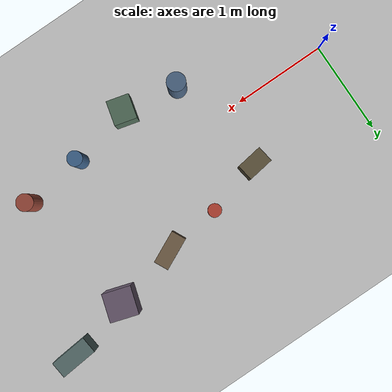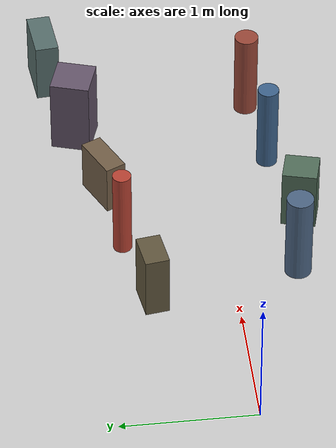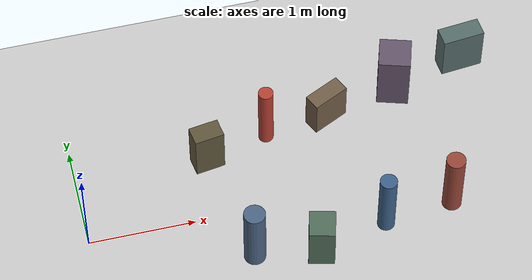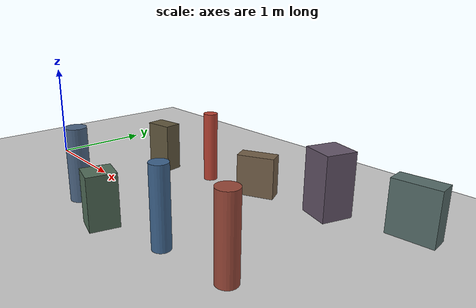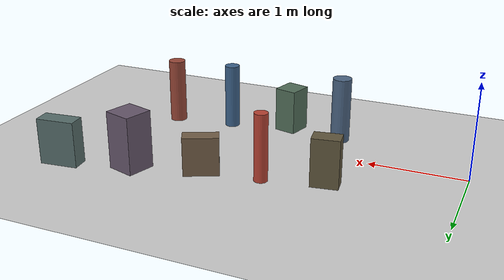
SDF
<?xml version="1.0"?>
<sdf version="1.9">
  <world name="follow_me_dense_mixed_obstacles">
    <plugin filename="libignition-gazebo-physics-system.so"
            name="ignition::gazebo::systems::Physics"/>
    <plugin filename="libignition-gazebo-user-commands-system.so"
            name="ignition::gazebo::systems::UserCommands"/>
    <plugin filename="libignition-gazebo-scene-broadcaster-system.so"
            name="ignition::gazebo::systems::SceneBroadcaster"/>
    <plugin filename="libignition-gazebo-sensors-system.so"
            name="ignition::gazebo::systems::Sensors">
      <!-- FortressではLiDAR出力をGazebo Transportへ出し、ROS側へはros_gz_bridgeで接続する。 -->
      <render_engine>ogre2</render_engine>
    </plugin>

    <physics name="default_physics" type="ode">
      <max_step_size>0.001</max_step_size>
      <real_time_update_rate>1000</real_time_update_rate>
      <real_time_factor>1.0</real_time_factor>
    </physics>

    <scene>
      <ambient>0.45 0.45 0.45 1</ambient>
      <background>0.7 0.7 0.7 1</background>
      <shadows>true</shadows>
    </scene>

    <light type="directional" name="sun">
      <cast_shadows>true</cast_shadows>
      <pose>0 0 10 0 0 0</pose>
      <diffuse>0.8 0.8 0.8 1</diffuse>
      <specular>0.2 0.2 0.2 1</specular>
      <attenuation>
        <range>1000</range>
        <constant>0.9</constant>
        <linear>0.01</linear>
        <quadratic>0.001</quadratic>
      </attenuation>
      <direction>-0.5 0.1 -0.9</direction>
    </light>

    <model name="ground_plane">
      <static>true</static>
      <link name="link">
        <collision name="collision">
          <geometry>
            <plane>
              <normal>0 0 1</normal>
              <size>100 100</size>
            </plane>
          </geometry>
        </collision>
        <visual name="visual">
          <geometry>
            <plane>
              <normal>0 0 1</normal>
              <size>100 100</size>
            </plane>
          </geometry>
          <material>
            <ambient>0.8 0.8 0.8 1</ambient>
            <diffuse>0.8 0.8 0.8 1</diffuse>
          </material>
        </visual>
      </link>
    </model>

    <model name="dense_box_left_1">
      <static>true</static>
      <pose>1.25 0.62 0.25 0 0 0.15</pose>
      <link name="link">
        <collision name="collision">
          <geometry>
            <box>
              <size>0.28 0.18 0.50</size>
            </box>
          </geometry>
        </collision>
        <visual name="visual">
          <visibility_flags>536870913</visibility_flags>
          <geometry>
            <box>
              <size>0.28 0.18 0.50</size>
            </box>
          </geometry>
          <material>
            <ambient>0.38 0.34 0.24 1</ambient>
            <diffuse>0.38 0.34 0.24 1</diffuse>
          </material>
        </visual>
      </link>
    </model>

    <model name="dense_cylinder_right_1">
      <static>true</static>
      <pose>1.45 -0.48 0.35 0 0 0</pose>
      <link name="link">
        <collision name="collision">
          <geometry>
            <cylinder>
              <radius>0.10</radius>
              <length>0.70</length>
            </cylinder>
          </geometry>
        </collision>
        <visual name="visual">
          <visibility_flags>536870913</visibility_flags>
          <geometry>
            <cylinder>
              <radius>0.10</radius>
              <length>0.70</length>
            </cylinder>
          </geometry>
          <material>
            <ambient>0.30 0.40 0.52 1</ambient>
            <diffuse>0.30 0.40 0.52 1</diffuse>
          </material>
        </visual>
      </link>
    </model>

    <model name="dense_pillar_left_2">
      <static>true</static>
      <pose>1.85 0.78 0.35 0 0 0</pose>
      <link name="link">
        <collision name="collision">
          <geometry>
            <cylinder>
              <radius>0.07</radius>
              <length>0.70</length>
            </cylinder>
          </geometry>
        </collision>
        <visual name="visual">
          <visibility_flags>536870913</visibility_flags>
          <geometry>
            <cylinder>
              <radius>0.07</radius>
              <length>0.70</length>
            </cylinder>
          </geometry>
          <material>
            <ambient>0.72 0.26 0.20 1</ambient>
            <diffuse>0.72 0.26 0.20 1</diffuse>
          </material>
        </visual>
      </link>
    </model>

    <model name="dense_box_right_2">
      <static>true</static>
      <pose>2.05 -0.58 0.24 0 0 -0.25</pose>
      <link name="link">
        <collision name="collision">
          <geometry>
            <box>
              <size>0.24 0.26 0.48</size>
            </box>
          </geometry>
        </collision>
        <visual name="visual">
          <visibility_flags>536870913</visibility_flags>
          <geometry>
            <box>
              <size>0.24 0.26 0.48</size>
            </box>
          </geometry>
          <material>
            <ambient>0.32 0.43 0.35 1</ambient>
            <diffuse>0.32 0.43 0.35 1</diffuse>
          </material>
        </visual>
      </link>
    </model>

    <model name="dense_low_box_left_3">
      <static>true</static>
      <pose>2.45 0.86 0.20 0 0 0.45</pose>
      <link name="link">
        <collision name="collision">
          <geometry>
            <box>
              <size>0.36 0.16 0.40</size>
            </box>
          </geometry>
        </collision>
        <visual name="visual">
          <visibility_flags>536870913</visibility_flags>
          <geometry>
            <box>
              <size>0.36 0.16 0.40</size>
            </box>
          </geometry>
          <material>
            <ambient>0.45 0.37 0.28 1</ambient>
            <diffuse>0.45 0.37 0.28 1</diffuse>
          </material>
        </visual>
      </link>
    </model>

    <model name="dense_pillar_right_3">
      <static>true</static>
      <pose>2.70 -0.42 0.35 0 0 0</pose>
      <link name="link">
        <collision name="collision">
          <geometry>
            <cylinder>
              <radius>0.08</radius>
              <length>0.70</length>
            </cylinder>
          </geometry>
        </collision>
        <visual name="visual">
          <visibility_flags>536870913</visibility_flags>
          <geometry>
            <cylinder>
              <radius>0.08</radius>
              <length>0.70</length>
            </cylinder>
          </geometry>
          <material>
            <ambient>0.24 0.39 0.55 1</ambient>
            <diffuse>0.24 0.39 0.55 1</diffuse>
          </material>
        </visual>
      </link>
    </model>

    <model name="dense_box_left_4">
      <static>true</static>
      <pose>3.15 1.02 0.30 0 0 -0.30</pose>
      <link name="link">
        <collision name="collision">
          <geometry>
            <box>
              <size>0.30 0.30 0.60</size>
            </box>
          </geometry>
        </collision>
        <visual name="visual">
          <visibility_flags>536870913</visibility_flags>
          <geometry>
            <box>
              <size>0.30 0.30 0.60</size>
            </box>
          </geometry>
          <material>
            <ambient>0.40 0.34 0.42 1</ambient>
            <diffuse>0.40 0.34 0.42 1</diffuse>
          </material>
        </visual>
      </link>
    </model>

    <model name="dense_pillar_right_4">
      <static>true</static>
      <pose>3.35 -0.34 0.35 0 0 0</pose>
      <link name="link">
        <collision name="collision">
          <geometry>
            <cylinder>
              <radius>0.09</radius>
              <length>0.70</length>
            </cylinder>
          </geometry>
        </collision>
        <visual name="visual">
          <visibility_flags>536870913</visibility_flags>
          <geometry>
            <cylinder>
              <radius>0.09</radius>
              <length>0.70</length>
            </cylinder>
          </geometry>
          <material>
            <ambient>0.60 0.28 0.22 1</ambient>
            <diffuse>0.60 0.28 0.22 1</diffuse>
          </material>
        </visual>
      </link>
    </model>

    <model name="dense_far_box_left_5">
      <static>true</static>
      <pose>3.85 1.20 0.24 0 0 0.10</pose>
      <link name="link">
        <collision name="collision">
          <geometry>
            <box>
              <size>0.40 0.18 0.48</size>
            </box>
          </geometry>
        </collision>
        <visual name="visual">
          <visibility_flags>536870913</visibility_flags>
          <geometry>
            <box>
              <size>0.40 0.18 0.48</size>
            </box>
          </geometry>
          <material>
            <ambient>0.34 0.43 0.42 1</ambient>
            <diffuse>0.34 0.43 0.42 1</diffuse>
          </material>
        </visual>
      </link>
    </model>
  </world>
</sdf>
